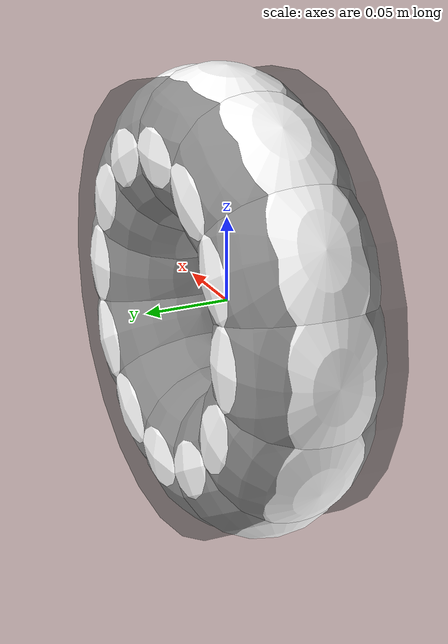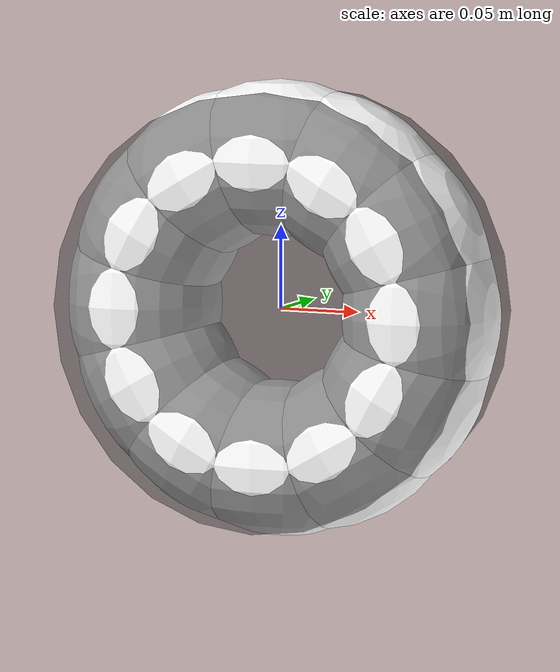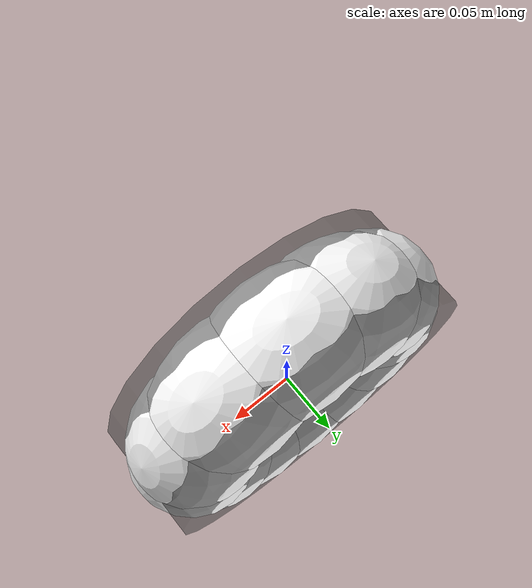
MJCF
<?xml version='1.0' encoding='utf-8'?>
<mujoco>
    <worldbody>
        <body name="plate_body" pos="0 0 0">
            <inertial pos="0 0 0" quat="0.707107 0 0 0.707107" mass="2.2423" diaginertia="0.0524193 0.0303095 0.0303095" />
            <joint name="plate_joint" pos="0 0 0" axis="0 1 0" />
            <geom size="0.13 0.0435" quat="0.707107 0.707107 0 0" type="cylinder" rgba="0.2 0.2 0.2 0.5" contype="0" conaffinity="0" />
            <body name="roller_0" pos="0.090000 0 0.000000">
                <inertial pos="0 0 0" quat="0.707107 0 0 0.707107" mass="0.1" diaginertia="0.00020618 0.00020618 0.00021125" />
                <joint name="roller_joint_0" pos="0 0 0" axis="-0.000000 0 1.000000" />
                <geom type="ellipsoid" size="0.07 0.047 0.047" rgba="1 1 1 1" euler="0 90 0" />
            </body>
            <body name="roller_1" pos="0.077942 0 0.045000">
                <inertial pos="0 0 0" quat="0.707107 0 0 0.707107" mass="0.1" diaginertia="0.00020618 0.00020618 0.00021125" />
                <joint name="roller_joint_1" pos="0 0 0" axis="-0.500000 0 0.866025" />
                <geom type="ellipsoid" size="0.07 0.047 0.047" rgba="1 1 1 1" euler="0 60 0" />
            </body>
            <body name="roller_2" pos="0.045000 0 0.077942">
                <inertial pos="0 0 0" quat="0.707107 0 0 0.707107" mass="0.1" diaginertia="0.00020618 0.00020618 0.00021125" />
                <joint name="roller_joint_2" pos="0 0 0" axis="-0.866025 0 0.500000" />
                <geom type="ellipsoid" size="0.07 0.047 0.047" rgba="1 1 1 1" euler="0 30 0" />
            </body>
            <body name="roller_3" pos="0.000000 0 0.090000">
                <inertial pos="0 0 0" quat="0.707107 0 0 0.707107" mass="0.1" diaginertia="0.00020618 0.00020618 0.00021125" />
                <joint name="roller_joint_3" pos="0 0 0" axis="-1.000000 0 0.000000" />
                <geom type="ellipsoid" size="0.07 0.047 0.047" rgba="1 1 1 1" euler="0 0 0" />
            </body>
            <body name="roller_4" pos="-0.045000 0 0.077942">
                <inertial pos="0 0 0" quat="0.707107 0 0 0.707107" mass="0.1" diaginertia="0.00020618 0.00020618 0.00021125" />
                <joint name="roller_joint_4" pos="0 0 0" axis="-0.866025 0 -0.500000" />
                <geom type="ellipsoid" size="0.07 0.047 0.047" rgba="1 1 1 1" euler="0 -30 0" />
            </body>
            <body name="roller_5" pos="-0.077942 0 0.045000">
                <inertial pos="0 0 0" quat="0.707107 0 0 0.707107" mass="0.1" diaginertia="0.00020618 0.00020618 0.00021125" />
                <joint name="roller_joint_5" pos="0 0 0" axis="-0.500000 0 -0.866025" />
                <geom type="ellipsoid" size="0.07 0.047 0.047" rgba="1 1 1 1" euler="0 -60 0" />
            </body>
            <body name="roller_6" pos="-0.090000 0 0.000000">
                <inertial pos="0 0 0" quat="0.707107 0 0 0.707107" mass="0.1" diaginertia="0.00020618 0.00020618 0.00021125" />
                <joint name="roller_joint_6" pos="0 0 0" axis="-0.000000 0 -1.000000" />
                <geom type="ellipsoid" size="0.07 0.047 0.047" rgba="1 1 1 1" euler="0 -90 0" />
            </body>
            <body name="roller_7" pos="-0.077942 0 -0.045000">
                <inertial pos="0 0 0" quat="0.707107 0 0 0.707107" mass="0.1" diaginertia="0.00020618 0.00020618 0.00021125" />
                <joint name="roller_joint_7" pos="0 0 0" axis="0.500000 0 -0.866025" />
                <geom type="ellipsoid" size="0.07 0.047 0.047" rgba="1 1 1 1" euler="0 -120 0" />
            </body>
            <body name="roller_8" pos="-0.045000 0 -0.077942">
                <inertial pos="0 0 0" quat="0.707107 0 0 0.707107" mass="0.1" diaginertia="0.00020618 0.00020618 0.00021125" />
                <joint name="roller_joint_8" pos="0 0 0" axis="0.866025 0 -0.500000" />
                <geom type="ellipsoid" size="0.07 0.047 0.047" rgba="1 1 1 1" euler="0 -150 0" />
            </body>
            <body name="roller_9" pos="-0.000000 0 -0.090000">
                <inertial pos="0 0 0" quat="0.707107 0 0 0.707107" mass="0.1" diaginertia="0.00020618 0.00020618 0.00021125" />
                <joint name="roller_joint_9" pos="0 0 0" axis="1.000000 0 -0.000000" />
                <geom type="ellipsoid" size="0.07 0.047 0.047" rgba="1 1 1 1" euler="0 -180 0" />
            </body>
            <body name="roller_10" pos="0.045000 0 -0.077942">
                <inertial pos="0 0 0" quat="0.707107 0 0 0.707107" mass="0.1" diaginertia="0.00020618 0.00020618 0.00021125" />
                <joint name="roller_joint_10" pos="0 0 0" axis="0.866025 0 0.500000" />
                <geom type="ellipsoid" size="0.07 0.047 0.047" rgba="1 1 1 1" euler="0 -210 0" />
            </body>
            <body name="roller_11" pos="0.077942 0 -0.045000">
                <inertial pos="0 0 0" quat="0.707107 0 0 0.707107" mass="0.1" diaginertia="0.00020618 0.00020618 0.00021125" />
                <joint name="roller_joint_11" pos="0 0 0" axis="0.500000 0 0.866025" />
                <geom type="ellipsoid" size="0.07 0.047 0.047" rgba="1 1 1 1" euler="0 -240 0" />
            </body>
        </body>
    </worldbody>
</mujoco>
